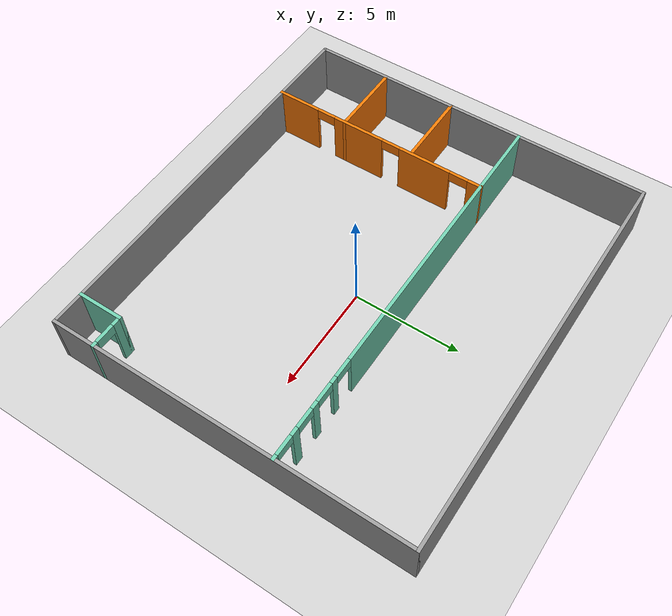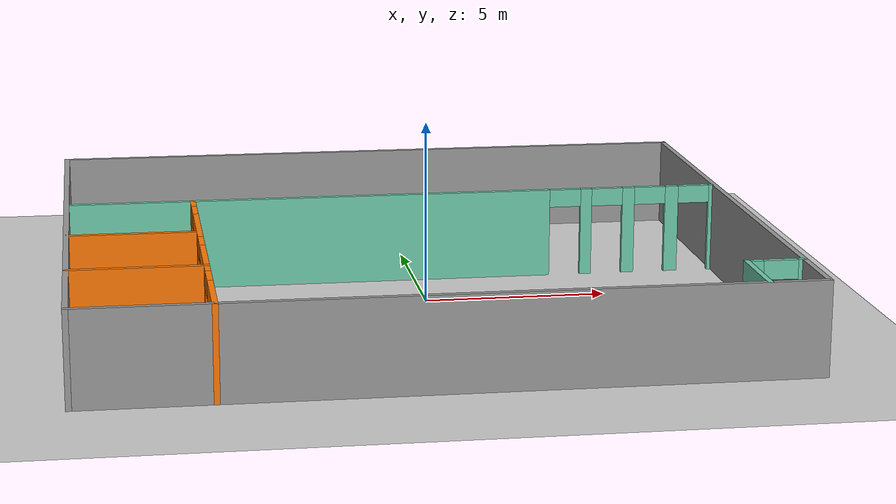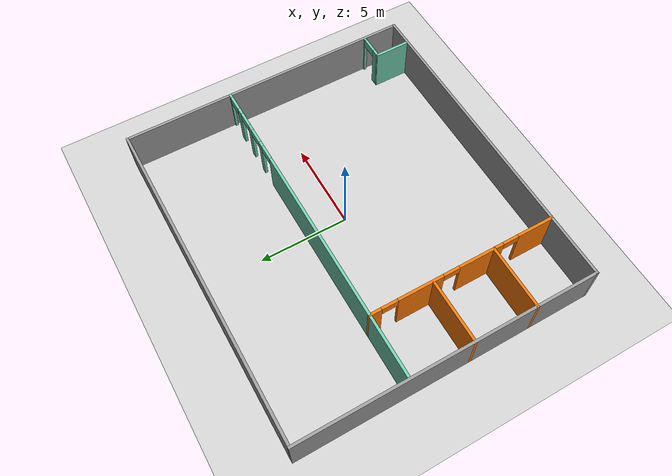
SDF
<sdf version="1.6">
 <world name="default">
  <model name="ground_plane">
   <static>1</static>
   <link name="link">
    <collision name="collision">
     <geometry><plane><normal>0 0 1</normal><size>100 100</size></plane></geometry>
     <surface><friction><ode><mu>100</mu><mu2>50</mu2></ode></friction></surface>
    </collision>
    <visual name="visual">
     <cast_shadows>0</cast_shadows>
     <geometry><plane><normal>0 0 1</normal><size>100 100</size></plane></geometry>
     <material>
      <script><uri>file://media/materials/scripts/gazebo.material</uri><name>Gazebo/Grey</name></script>
     </material>
    </visual>
   </link>
  </model>
  <model name="mybuilding">
   <pose>-0.504834 0.02013 0 0 -0 0</pose>
   <link name="Wall_1">
    <collision name="Wall_1_Collision">
     <geometry><box><size>18.65 0.15 2.5</size></box></geometry>
     <pose>0 0 1.25 0 -0 0</pose>
    </collision>
    <visual name="Wall_1_Visual">
     <pose>0 0 1.25 0 -0 0</pose>
     <geometry><box><size>18.65 0.15 2.5</size></box></geometry>
     <material>
      <script><uri>file://media/materials/scripts/gazebo.material</uri><name>Gazebo/Grey</name></script>
      <ambient>1 1 1 1</ambient>
     </material>
     <meta><layer>0</layer></meta>
    </visual>
    <pose>0 8.25 0 0 -0 0</pose>
   </link>
   <link name="Wall_10">
    <collision name="Wall_10_Collision">
     <geometry><box><size>3.65 0.15 2.5</size></box></geometry>
     <pose>0 0 1.25 0 -0 0</pose>
    </collision>
    <visual name="Wall_10_Visual">
     <pose>0 0 1.25 0 -0 0</pose>
     <geometry><box><size>3.65 0.15 2.5</size></box></geometry>
     <material>
      <script><uri>file://media/materials/scripts/gazebo.material</uri><name>Gazebo/Grey</name></script>
      <ambient>0.996078 0.47451 0.0196078 1</ambient>
     </material>
     <meta><layer>0</layer></meta>
    </visual>
    <pose>-7.5 -1.25 0 0 -0 0</pose>
   </link>
   <link name="Wall_12">
    <collision name="Wall_12_Collision">
     <geometry><box><size>3.65 0.15 2.5</size></box></geometry>
     <pose>0 0 1.25 0 -0 0</pose>
    </collision>
    <visual name="Wall_12_Visual">
     <pose>0 0 1.25 0 -0 0</pose>
     <geometry><box><size>3.65 0.15 2.5</size></box></geometry>
     <material>
      <script><uri>file://media/materials/scripts/gazebo.material</uri><name>Gazebo/Grey</name></script>
      <ambient>0.996078 0.47451 0.0196078 1</ambient>
     </material>
     <meta><layer>0</layer></meta>
    </visual>
    <pose>-7.5 -4.75 0 0 -0 0</pose>
   </link>
   <link name="Wall_14">
    <collision name="Wall_14_Collision">
     <geometry><box><size>2.15 0.15 2.5</size></box></geometry>
     <pose>0 0 1.25 0 -0 0</pose>
    </collision>
    <visual name="Wall_14_Visual">
     <pose>0 0 1.25 0 -0 0</pose>
     <geometry><box><size>2.15 0.15 2.5</size></box></geometry>
     <material>
      <script><uri>file://media/materials/scripts/gazebo.material</uri><name>Gazebo/Grey</name></script>
      <ambient>0.435294 0.796078 0.67451 1</ambient>
     </material>
     <meta><layer>0</layer></meta>
    </visual>
    <pose>7.75 -7.25 0 0 -0 1.5708</pose>
   </link>
   <link name="Wall_15">
    <pose>8.5 -6.25 0 0 -0 0</pose>
    <visual name="Wall_15_Visual_0">
     <pose>-0.577478 0 1.25 0 -0 0</pose>
     <geometry><box><size>0.495043 0.15 2.5</size></box></geometry>
     <material>
      <script><uri>file://media/materials/scripts/gazebo.material</uri><name>Gazebo/Grey</name></script>
      <ambient>0.435294 0.796078 0.67451 1</ambient>
     </material>
     <meta><layer>0</layer></meta>
    </visual>
    <collision name="Wall_15_Collision_0">
     <geometry><box><size>0.495043 0.15 2.5</size></box></geometry>
     <pose>-0.577478 0 1.25 0 -0 0</pose>
    </collision>
    <visual name="Wall_15_Visual_1">
     <pose>0.697522 0 1.25 0 -0 0</pose>
     <geometry><box><size>0.254957 0.15 2.5</size></box></geometry>
     <material>
      <script><uri>file://media/materials/scripts/gazebo.material</uri><name>Gazebo/Grey</name></script>
      <ambient>0.435294 0.796078 0.67451 1</ambient>
     </material>
     <meta><layer>0</layer></meta>
    </visual>
    <collision name="Wall_15_Collision_1">
     <geometry><box><size>0.254957 0.15 2.5</size></box></geometry>
     <pose>0.697522 0 1.25 0 -0 0</pose>
    </collision>
    <visual name="Wall_15_Visual_2">
     <pose>0.120043 0 2.25 0 -0 0</pose>
     <geometry><box><size>0.9 0.15 0.5</size></box></geometry>
     <material>
      <script><uri>file://media/materials/scripts/gazebo.material</uri><name>Gazebo/Grey</name></script>
      <ambient>0.435294 0.796078 0.67451 1</ambient>
     </material>
     <meta><layer>0</layer></meta>
    </visual>
    <collision name="Wall_15_Collision_2">
     <geometry><box><size>0.9 0.15 0.5</size></box></geometry>
     <pose>0.120043 0 2.25 0 -0 0</pose>
    </collision>
   </link>
   <link name="Wall_2">
    <collision name="Wall_2_Collision">
     <geometry><box><size>16.65 0.15 2.5</size></box></geometry>
     <pose>0 0 1.25 0 -0 0</pose>
    </collision>
    <visual name="Wall_2_Visual">
     <pose>0 0 1.25 0 -0 0</pose>
     <geometry><box><size>16.65 0.15 2.5</size></box></geometry>
     <material>
      <script><uri>file://media/materials/scripts/gazebo.material</uri><name>Gazebo/Grey</name></script>
      <ambient>1 1 1 1</ambient>
     </material>
     <meta><layer>0</layer></meta>
    </visual>
    <pose>9.25 0 0 0 0 -1.5708</pose>
   </link>
   <link name="Wall_3">
    <collision name="Wall_3_Collision">
     <geometry><box><size>18.65 0.15 2.5</size></box></geometry>
     <pose>0 0 1.25 0 -0 0</pose>
    </collision>
    <visual name="Wall_3_Visual">
     <pose>0 0 1.25 0 -0 0</pose>
     <geometry><box><size>18.65 0.15 2.5</size></box></geometry>
     <material>
      <script><uri>file://media/materials/scripts/gazebo.material</uri><name>Gazebo/Grey</name></script>
      <ambient>1 1 1 1</ambient>
     </material>
     <meta><layer>0</layer></meta>
    </visual>
    <pose>0 -8.25 0 0 -0 3.14159</pose>
   </link>
   <link name="Wall_4">
    <collision name="Wall_4_Collision">
     <geometry><box><size>16.65 0.15 2.5</size></box></geometry>
     <pose>0 0 1.25 0 -0 0</pose>
    </collision>
    <visual name="Wall_4_Visual">
     <pose>0 0 1.25 0 -0 0</pose>
     <geometry><box><size>16.65 0.15 2.5</size></box></geometry>
     <material>
      <script><uri>file://media/materials/scripts/gazebo.material</uri><name>Gazebo/Grey</name></script>
      <ambient>1 1 1 1</ambient>
     </material>
     <meta><layer>0</layer></meta>
    </visual>
    <pose>-9.25 0 0 0 -0 1.5708</pose>
   </link>
   <link name="Wall_6">
    <pose>0 2.25 0 0 -0 0</pose>
    <visual name="Wall_6_Visual_0">
     <pose>-2.45878 0 1.25 0 -0 0</pose>
     <geometry><box><size>13.7324 0.15 2.5</size></box></geometry>
     <material>
      <script><uri>file://media/materials/scripts/gazebo.material</uri><name>Gazebo/Grey</name></script>
      <ambient>0.435294 0.796078 0.67451 1</ambient>
     </material>
     <meta><layer>0</layer></meta>
    </visual>
    <collision name="Wall_6_Collision_0">
     <geometry><box><size>13.7324 0.15 2.5</size></box></geometry>
     <pose>-2.45878 0 1.25 0 -0 0</pose>
    </collision>
    <visual name="Wall_6_Visual_1">
     <pose>5.46925 0 1.25 0 -0 0</pose>
     <geometry><box><size>0.323609 0.15 2.5</size></box></geometry>
     <material>
      <script><uri>file://media/materials/scripts/gazebo.material</uri><name>Gazebo/Grey</name></script>
      <ambient>0.435294 0.796078 0.67451 1</ambient>
     </material>
     <meta><layer>0</layer></meta>
    </visual>
    <collision name="Wall_6_Collision_1">
     <geometry><box><size>0.323609 0.15 2.5</size></box></geometry>
     <pose>5.46925 0 1.25 0 -0 0</pose>
    </collision>
    <visual name="Wall_6_Visual_2">
     <pose>6.70815 0 1.25 0 -0 0</pose>
     <geometry><box><size>0.3542 0.15 2.5</size></box></geometry>
     <material>
      <script><uri>file://media/materials/scripts/gazebo.material</uri><name>Gazebo/Grey</name></script>
      <ambient>0.435294 0.796078 0.67451 1</ambient>
     </material>
     <meta><layer>0</layer></meta>
    </visual>
    <collision name="Wall_6_Collision_2">
     <geometry><box><size>0.3542 0.15 2.5</size></box></geometry>
     <pose>6.70815 0 1.25 0 -0 0</pose>
    </collision>
    <visual name="Wall_6_Visual_3">
     <pose>7.97765 0 1.25 0 -0 0</pose>
     <geometry><box><size>0.38479 0.15 2.5</size></box></geometry>
     <material>
      <script><uri>file://media/materials/scripts/gazebo.material</uri><name>Gazebo/Grey</name></script>
      <ambient>0.435294 0.796078 0.67451 1</ambient>
     </material>
     <meta><layer>0</layer></meta>
    </visual>
    <collision name="Wall_6_Collision_3">
     <geometry><box><size>0.38479 0.15 2.5</size></box></geometry>
     <pose>7.97765 0 1.25 0 -0 0</pose>
    </collision>
    <visual name="Wall_6_Visual_4">
     <pose>9.19752 0 1.25 0 -0 0</pose>
     <geometry><box><size>0.254957 0.15 2.5</size></box></geometry>
     <material>
      <script><uri>file://media/materials/scripts/gazebo.material</uri><name>Gazebo/Grey</name></script>
      <ambient>0.435294 0.796078 0.67451 1</ambient>
     </material>
     <meta><layer>0</layer></meta>
    </visual>
    <collision name="Wall_6_Collision_4">
     <geometry><box><size>0.254957 0.15 2.5</size></box></geometry>
     <pose>9.19752 0 1.25 0 -0 0</pose>
    </collision>
    <visual name="Wall_6_Visual_5">
     <pose>4.85745 0 2.25 0 -0 0</pose>
     <geometry><box><size>0.9 0.15 0.5</size></box></geometry>
     <material>
      <script><uri>file://media/materials/scripts/gazebo.material</uri><name>Gazebo/Grey</name></script>
      <ambient>0.435294 0.796078 0.67451 1</ambient>
     </material>
     <meta><layer>0</layer></meta>
    </visual>
    <collision name="Wall_6_Collision_5">
     <geometry><box><size>0.9 0.15 0.5</size></box></geometry>
     <pose>4.85745 0 2.25 0 -0 0</pose>
    </collision>
    <visual name="Wall_6_Visual_6">
     <pose>6.08105 0 2.25 0 -0 0</pose>
     <geometry><box><size>0.9 0.15 0.5</size></box></geometry>
     <material>
      <script><uri>file://media/materials/scripts/gazebo.material</uri><name>Gazebo/Grey</name></script>
      <ambient>0.435294 0.796078 0.67451 1</ambient>
     </material>
     <meta><layer>0</layer></meta>
    </visual>
    <collision name="Wall_6_Collision_6">
     <geometry><box><size>0.9 0.15 0.5</size></box></geometry>
     <pose>6.08105 0 2.25 0 -0 0</pose>
    </collision>
    <visual name="Wall_6_Visual_7">
     <pose>7.33525 0 2.25 0 -0 0</pose>
     <geometry><box><size>0.9 0.15 0.5</size></box></geometry>
     <material>
      <script><uri>file://media/materials/scripts/gazebo.material</uri><name>Gazebo/Grey</name></script>
      <ambient>0.435294 0.796078 0.67451 1</ambient>
     </material>
     <meta><layer>0</layer></meta>
    </visual>
    <collision name="Wall_6_Collision_7">
     <geometry><box><size>0.9 0.15 0.5</size></box></geometry>
     <pose>7.33525 0 2.25 0 -0 0</pose>
    </collision>
    <visual name="Wall_6_Visual_8">
     <pose>8.62004 0 2.25 0 -0 0</pose>
     <geometry><box><size>0.9 0.15 0.5</size></box></geometry>
     <material>
      <script><uri>file://media/materials/scripts/gazebo.material</uri><name>Gazebo/Grey</name></script>
      <ambient>0.435294 0.796078 0.67451 1</ambient>
     </material>
     <meta><layer>0</layer></meta>
    </visual>
    <collision name="Wall_6_Collision_8">
     <geometry><box><size>0.9 0.15 0.5</size></box></geometry>
     <pose>8.62004 0 2.25 0 -0 0</pose>
    </collision>
   </link>
   <link name="Wall_8">
    <pose>-5.75 -3 0 0 0 -1.5708</pose>
    <visual name="Wall_8_Visual_0">
     <pose>-4.97355 0 1.25 0 -0 0</pose>
     <geometry><box><size>0.702904 0.15 2.5</size></box></geometry>
     <material>
      <script><uri>file://media/materials/scripts/gazebo.material</uri><name>Gazebo/Grey</name></script>
      <ambient>0.996078 0.47451 0.0196078 1</ambient>
     </material>
     <meta><layer>0</layer></meta>
    </visual>
    <collision name="Wall_8_Collision_0">
     <geometry><box><size>0.702904 0.15 2.5</size></box></geometry>
     <pose>-4.97355 0 1.25 0 -0 0</pose>
    </collision>
    <visual name="Wall_8_Visual_1">
     <pose>-2.44375 0 1.25 0 -0 0</pose>
     <geometry><box><size>2.5567 0.15 2.5</size></box></geometry>
     <material>
      <script><uri>file://media/materials/scripts/gazebo.material</uri><name>Gazebo/Grey</name></script>
      <ambient>0.996078 0.47451 0.0196078 1</ambient>
     </material>
     <meta><layer>0</layer></meta>
    </visual>
    <collision name="Wall_8_Collision_1">
     <geometry><box><size>2.5567 0.15 2.5</size></box></geometry>
     <pose>-2.44375 0 1.25 0 -0 0</pose>
    </collision>
    <visual name="Wall_8_Visual_2">
     <pose>1.01295 0 1.25 0 -0 0</pose>
     <geometry><box><size>2.5567 0.15 2.5</size></box></geometry>
     <material>
      <script><uri>file://media/materials/scripts/gazebo.material</uri><name>Gazebo/Grey</name></script>
      <ambient>0.996078 0.47451 0.0196078 1</ambient>
     </material>
     <meta><layer>0</layer></meta>
    </visual>
    <collision name="Wall_8_Collision_2">
     <geometry><box><size>2.5567 0.15 2.5</size></box></geometry>
     <pose>1.01295 0 1.25 0 -0 0</pose>
    </collision>
    <visual name="Wall_8_Visual_3">
     <pose>4.25815 0 1.25 0 -0 0</pose>
     <geometry><box><size>2.1337 0.15 2.5</size></box></geometry>
     <material>
      <script><uri>file://media/materials/scripts/gazebo.material</uri><name>Gazebo/Grey</name></script>
      <ambient>0.996078 0.47451 0.0196078 1</ambient>
     </material>
     <meta><layer>0</layer></meta>
    </visual>
    <collision name="Wall_8_Collision_3">
     <geometry><box><size>2.1337 0.15 2.5</size></box></geometry>
     <pose>4.25815 0 1.25 0 -0 0</pose>
    </collision>
    <visual name="Wall_8_Visual_4">
     <pose>-4.1721 0 2.25 0 -0 0</pose>
     <geometry><box><size>0.9 0.15 0.5</size></box></geometry>
     <material>
      <script><uri>file://media/materials/scripts/gazebo.material</uri><name>Gazebo/Grey</name></script>
      <ambient>0.996078 0.47451 0.0196078 1</ambient>
     </material>
     <meta><layer>0</layer></meta>
    </visual>
    <collision name="Wall_8_Collision_4">
     <geometry><box><size>0.9 0.15 0.5</size></box></geometry>
     <pose>-4.1721 0 2.25 0 -0 0</pose>
    </collision>
    <visual name="Wall_8_Visual_5">
     <pose>-0.715401 0 2.25 0 -0 0</pose>
     <geometry><box><size>0.9 0.15 0.5</size></box></geometry>
     <material>
      <script><uri>file://media/materials/scripts/gazebo.material</uri><name>Gazebo/Grey</name></script>
      <ambient>0.996078 0.47451 0.0196078 1</ambient>
     </material>
     <meta><layer>0</layer></meta>
    </visual>
    <collision name="Wall_8_Collision_5">
     <geometry><box><size>0.9 0.15 0.5</size></box></geometry>
     <pose>-0.715401 0 2.25 0 -0 0</pose>
    </collision>
    <visual name="Wall_8_Visual_6">
     <pose>2.7413 0 2.25 0 -0 0</pose>
     <geometry><box><size>0.9 0.15 0.5</size></box></geometry>
     <material>
      <script><uri>file://media/materials/scripts/gazebo.material</uri><name>Gazebo/Grey</name></script>
      <ambient>0.996078 0.47451 0.0196078 1</ambient>
     </material>
     <meta><layer>0</layer></meta>
    </visual>
    <collision name="Wall_8_Collision_6">
     <geometry><box><size>0.9 0.15 0.5</size></box></geometry>
     <pose>2.7413 0 2.25 0 -0 0</pose>
    </collision>
   </link>
   <static>1</static>
  </model>
 </world>
</sdf>
